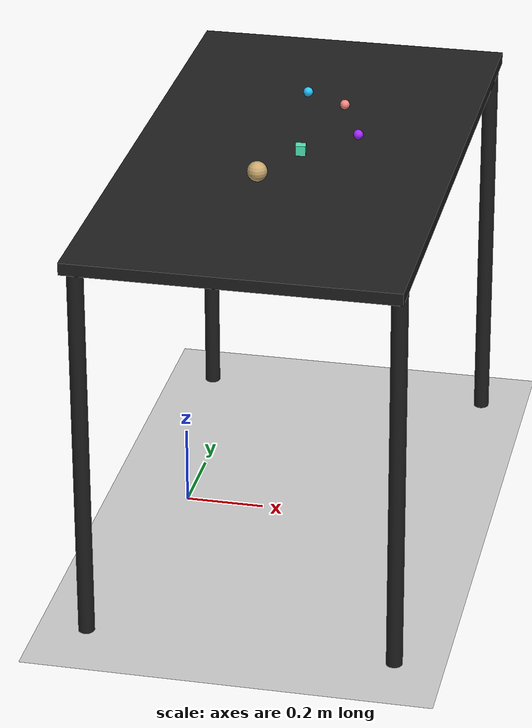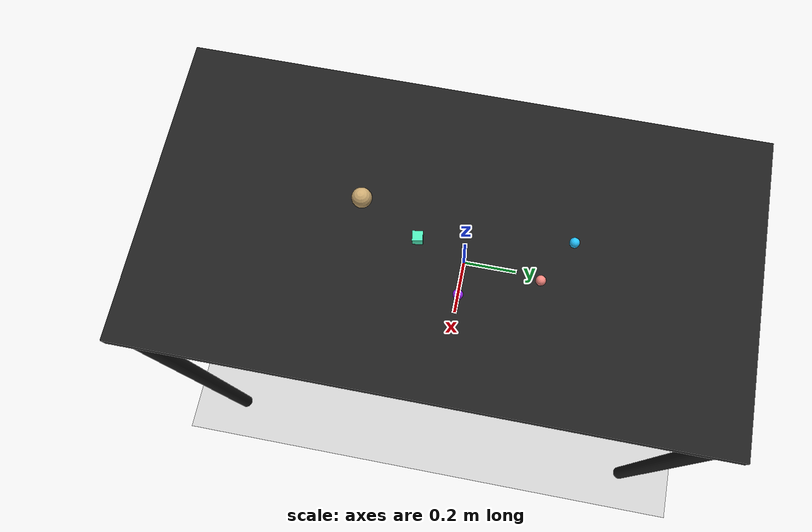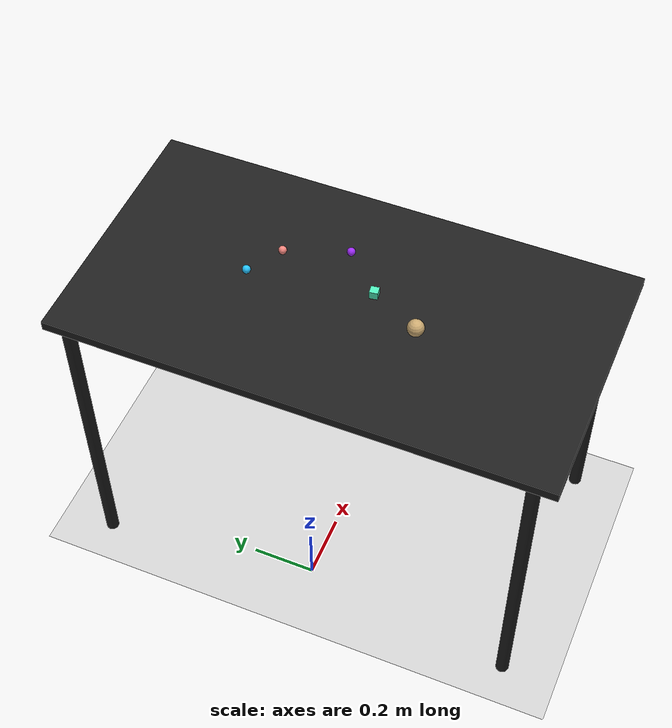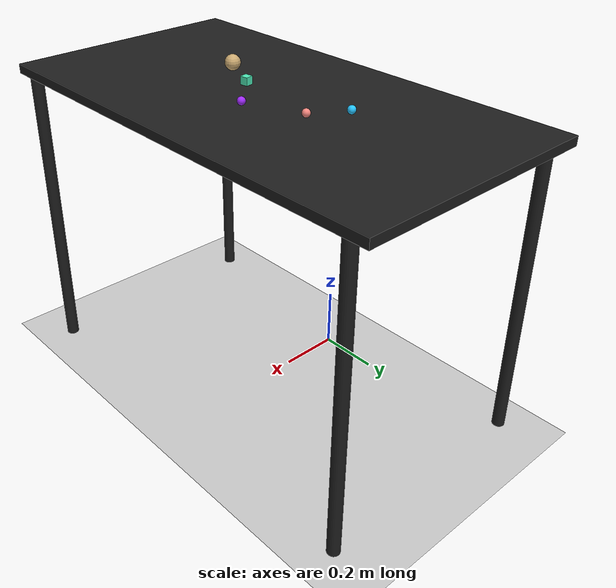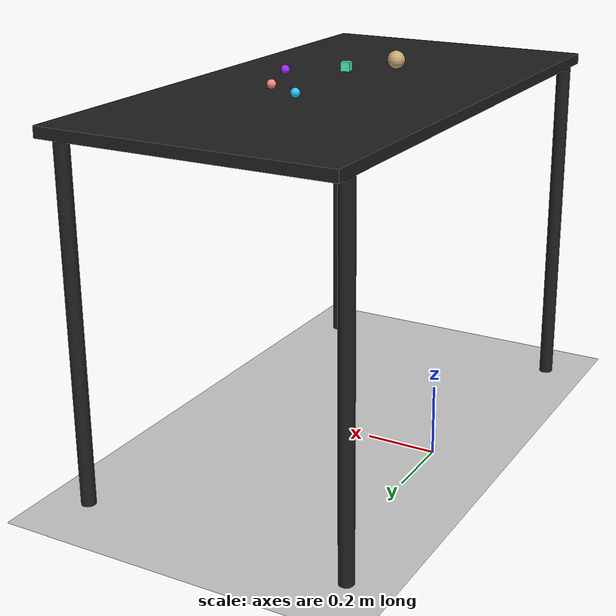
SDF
<?xml version="1.0" ?>
<sdf version="1.6">
  <world name="arm_world">
    <plugin filename="gz-sim-physics-system" name="gz::sim::systems::Physics">
      <engine>
        <filename>libgz-physics-bullet-featherstone-plugin.so</filename>
      </engine>
    </plugin>
    <plugin filename="gz-sim-user-commands-system" name="gz::sim::systems::UserCommands"/>
    <plugin filename="gz-sim-scene-broadcaster-system" name="gz::sim::systems::SceneBroadcaster"/>
    <plugin filename="gz-sim-sensors-system" name="gz::sim::systems::Sensors">
      <render_engine>ogre2</render_engine>
    </plugin>
    <gravity>0.0 0.0 -9.8</gravity>
    <scene>
      <shadows>false</shadows>
    </scene>
    <gui>
      <camera name="user_camera">
        <pose>0.75 -0.75 1.4 0 0.29 2.21</pose>
      </camera>
    </gui>
    <include>
      <uri>https://fuel.gazebosim.org/1.0/OpenRobotics/models/Sun</uri>
    </include>
    <model name="table">
      <static>true</static>
      <include>
        <uri>model://table</uri>
      </include>
      <pose>0.29 0 0 0 0 1.5708</pose>
    </model>
    <model name="ground_plane">
      <static>true</static>
      <link name="link">
        <collision name="collision">
          <geometry>
            <plane>
              <normal>0 0 1</normal>
            </plane>
          </geometry>
          <surface>
            <friction>
              <ode>
                <mu>1.0</mu>
                <mu2>1.0</mu2>
              </ode>
            </friction>
          </surface>
        </collision>
        <visual name="visual">
          <geometry>
            <plane>
              <normal>0 0 1</normal>
              <size>100 100</size>
            </plane>
          </geometry>
          <material>
            <ambient>0.8 0.8 0.8 1</ambient>
            <diffuse>0.8 0.8 0.8 1</diffuse>
            <specular>0.8 0.8 0.8 1</specular>
          </material>
        </visual>
      </link>
    </model>
    <model name="sphere_s_0">
      <pose>0.436 0.046 1.05 0 0 2.67</pose>
      <link name="sphere_s_0_link">
        <inertial>
          <mass>0.05</mass>
          <inertia>
            <ixx>2.04e-7</ixx>
            <iyy>2.04e-7</iyy>
            <izz>3.9e-8</izz>
            <ixy>0</ixy>
            <ixz>0</ixz>
            <iyz>0</iyz>
          </inertia>
        </inertial>
        <collision name="sphere_s_0_collision">
          <geometry>
            <sphere>
              <radius>0.0125</radius>
            </sphere>
          </geometry>
          <surface>
            <friction>
              <ode>
                <mu>0.8</mu>
                <mu2>0.8</mu2>
                <fdir1>0 0 1</fdir1>
                <slip1>0.001</slip1>
                <slip2>0.001</slip2>
              </ode>
              <torsional>
                <coefficient>0.1</coefficient>
                <surface_radius>0.015</surface_radius>
                <use_patch_radius>true</use_patch_radius>
              </torsional>
            </friction>
            <contact>
              <ode>
                <kp>1e5</kp>
                <kd>10</kd>
                <max_vel>0.1</max_vel>
                <min_depth>0.001</min_depth>
                <soft_cfm>0.01</soft_cfm>
                <soft_erp>0.2</soft_erp>
              </ode>
            </contact>
            <bounce>
              <restitution_coefficient>0.2</restitution_coefficient>
              <threshold>0.01</threshold>
            </bounce>
          </surface>
        </collision>
        <visual name="sphere_s_0_visual">
          <geometry>
            <sphere>
              <radius>0.0125</radius>
            </sphere>
          </geometry>
          <material>
            <ambient>0.62 0.16 0.98 1</ambient>
            <diffuse>0.62 0.16 0.98 1</diffuse>
          </material>
        </visual>
        <velocity_decay>
          <linear>1</linear>
          <angular>1</angular>
        </velocity_decay>
      </link>
    </model>
    <model name="sphere_s_1">
      <pose>0.26 0.293 1.05 0 0 2.46</pose>
      <link name="sphere_s_1_link">
        <inertial>
          <mass>0.05</mass>
          <inertia>
            <ixx>2.04e-7</ixx>
            <iyy>2.04e-7</iyy>
            <izz>3.9e-8</izz>
            <ixy>0</ixy>
            <ixz>0</ixz>
            <iyz>0</iyz>
          </inertia>
        </inertial>
        <collision name="sphere_s_1_collision">
          <geometry>
            <sphere>
              <radius>0.0125</radius>
            </sphere>
          </geometry>
          <surface>
            <friction>
              <ode>
                <mu>0.8</mu>
                <mu2>0.8</mu2>
                <fdir1>0 0 1</fdir1>
                <slip1>0.001</slip1>
                <slip2>0.001</slip2>
              </ode>
              <torsional>
                <coefficient>0.1</coefficient>
                <surface_radius>0.015</surface_radius>
                <use_patch_radius>true</use_patch_radius>
              </torsional>
            </friction>
            <contact>
              <ode>
                <kp>1e5</kp>
                <kd>10</kd>
                <max_vel>0.1</max_vel>
                <min_depth>0.001</min_depth>
                <soft_cfm>0.01</soft_cfm>
                <soft_erp>0.2</soft_erp>
              </ode>
            </contact>
            <bounce>
              <restitution_coefficient>0.2</restitution_coefficient>
              <threshold>0.01</threshold>
            </bounce>
          </surface>
        </collision>
        <visual name="sphere_s_1_visual">
          <geometry>
            <sphere>
              <radius>0.0125</radius>
            </sphere>
          </geometry>
          <material>
            <ambient>0.14 0.76 0.99 1</ambient>
            <diffuse>0.14 0.76 0.99 1</diffuse>
          </material>
        </visual>
        <velocity_decay>
          <linear>1</linear>
          <angular>1</angular>
        </velocity_decay>
      </link>
    </model>
    <model name="sphere_s_2">
      <pose>0.367 0.229 1.05 0 0 1.1</pose>
      <link name="sphere_s_2_link">
        <inertial>
          <mass>0.05</mass>
          <inertia>
            <ixx>2.04e-7</ixx>
            <iyy>2.04e-7</iyy>
            <izz>3.9e-8</izz>
            <ixy>0</ixy>
            <ixz>0</ixz>
            <iyz>0</iyz>
          </inertia>
        </inertial>
        <collision name="sphere_s_2_collision">
          <geometry>
            <sphere>
              <radius>0.0125</radius>
            </sphere>
          </geometry>
          <surface>
            <friction>
              <ode>
                <mu>0.8</mu>
                <mu2>0.8</mu2>
                <fdir1>0 0 1</fdir1>
                <slip1>0.001</slip1>
                <slip2>0.001</slip2>
              </ode>
              <torsional>
                <coefficient>0.1</coefficient>
                <surface_radius>0.015</surface_radius>
                <use_patch_radius>true</use_patch_radius>
              </torsional>
            </friction>
            <contact>
              <ode>
                <kp>1e5</kp>
                <kd>10</kd>
                <max_vel>0.1</max_vel>
                <min_depth>0.001</min_depth>
                <soft_cfm>0.01</soft_cfm>
                <soft_erp>0.2</soft_erp>
              </ode>
            </contact>
            <bounce>
              <restitution_coefficient>0.2</restitution_coefficient>
              <threshold>0.01</threshold>
            </bounce>
          </surface>
        </collision>
        <visual name="sphere_s_2_visual">
          <geometry>
            <sphere>
              <radius>0.0125</radius>
            </sphere>
          </geometry>
          <material>
            <ambient>0.95 0.52 0.49 1</ambient>
            <diffuse>0.95 0.52 0.49 1</diffuse>
          </material>
        </visual>
        <velocity_decay>
          <linear>1</linear>
          <angular>1</angular>
        </velocity_decay>
      </link>
    </model>
    <model name="cube_s_3">
      <pose>0.316 -0.073 1.05 0 0 0.14</pose>
      <link name="cube_s_3_link">
        <inertial>
          <mass>0.05</mass>
          <inertia>
            <ixx>2.04e-7</ixx>
            <iyy>2.04e-7</iyy>
            <izz>3.9e-8</izz>
            <ixy>0</ixy>
            <ixz>0</ixz>
            <iyz>0</iyz>
          </inertia>
        </inertial>
        <collision name="cube_s_3_collision">
          <geometry>
            <box>
              <size>0.025 0.025 0.025</size>
            </box>
          </geometry>
          <surface>
            <friction>
              <ode>
                <mu>0.8</mu>
                <mu2>0.8</mu2>
                <fdir1>0 0 1</fdir1>
                <slip1>0.001</slip1>
                <slip2>0.001</slip2>
              </ode>
              <torsional>
                <coefficient>0.1</coefficient>
                <surface_radius>0.015</surface_radius>
                <use_patch_radius>true</use_patch_radius>
              </torsional>
            </friction>
            <contact>
              <ode>
                <kp>1e5</kp>
                <kd>10</kd>
                <max_vel>0.1</max_vel>
                <min_depth>0.001</min_depth>
                <soft_cfm>0.01</soft_cfm>
                <soft_erp>0.2</soft_erp>
              </ode>
            </contact>
            <bounce>
              <restitution_coefficient>0.2</restitution_coefficient>
              <threshold>0.01</threshold>
            </bounce>
          </surface>
        </collision>
        <visual name="cube_s_3_visual">
          <geometry>
            <box>
              <size>0.025 0.025 0.025</size>
            </box>
          </geometry>
          <material>
            <ambient>0.3 0.92 0.72 1</ambient>
            <diffuse>0.3 0.92 0.72 1</diffuse>
          </material>
        </visual>
        <velocity_decay>
          <linear>1</linear>
          <angular>1</angular>
        </velocity_decay>
      </link>
    </model>
    <model name="sphere_m_4">
      <pose>0.241 -0.225 1.05 0 0 3.52</pose>
      <link name="sphere_m_4_link">
        <inertial>
          <mass>0.05</mass>
          <inertia>
            <ixx>2.04e-7</ixx>
            <iyy>2.04e-7</iyy>
            <izz>3.9e-8</izz>
            <ixy>0</ixy>
            <ixz>0</ixz>
            <iyz>0</iyz>
          </inertia>
        </inertial>
        <collision name="sphere_m_4_collision">
          <geometry>
            <sphere>
              <radius>0.025</radius>
            </sphere>
          </geometry>
          <surface>
            <friction>
              <ode>
                <mu>0.8</mu>
                <mu2>0.8</mu2>
                <fdir1>0 0 1</fdir1>
                <slip1>0.001</slip1>
                <slip2>0.001</slip2>
              </ode>
              <torsional>
                <coefficient>0.1</coefficient>
                <surface_radius>0.015</surface_radius>
                <use_patch_radius>true</use_patch_radius>
              </torsional>
            </friction>
            <contact>
              <ode>
                <kp>1e5</kp>
                <kd>10</kd>
                <max_vel>0.1</max_vel>
                <min_depth>0.001</min_depth>
                <soft_cfm>0.01</soft_cfm>
                <soft_erp>0.2</soft_erp>
              </ode>
            </contact>
            <bounce>
              <restitution_coefficient>0.2</restitution_coefficient>
              <threshold>0.01</threshold>
            </bounce>
          </surface>
        </collision>
        <visual name="sphere_m_4_visual">
          <geometry>
            <sphere>
              <radius>0.025</radius>
            </sphere>
          </geometry>
          <material>
            <ambient>0.79 0.66 0.44 1</ambient>
            <diffuse>0.79 0.66 0.44 1</diffuse>
          </material>
        </visual>
        <velocity_decay>
          <linear>1</linear>
          <angular>1</angular>
        </velocity_decay>
      </link>
    </model>
  </world>
</sdf>

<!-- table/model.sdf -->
<sdf version="1.5">
  <model name="table">
    <static>true</static>
    <link name="link">
      <collision name="surface">
        <pose>0 0 1.0 0 0 0</pose>
        <geometry>
          <box>
            <size>1.5 0.8 0.03</size>
          </box>
        </geometry>
        <surface>
          <friction>
            <ode>
              <mu>0.6</mu>
              <mu2>0.6</mu2>
            </ode>
          </friction>
        </surface>
      </collision>
      <visual name="surface">
        <pose>0 0 1.0 0 0 0</pose>
        <geometry>
          <box>
            <size>1.5 0.8 0.03</size>
          </box>
        </geometry>
        <material>
          <script>
            <uri>file://media/materials/scripts/gazebo.material</uri>
            <name>Gazebo/Black</name>
          </script>
        </material>
      </visual>
      <collision name="front_left_leg">
        <pose>0.68 0.38 0.5 0 0 0</pose>
        <geometry>
          <cylinder>
            <radius>0.02</radius>
            <length>1.0</length>
          </cylinder>
        </geometry>
      </collision>
      <visual name="front_left_leg">
        <pose>0.68 0.38 0.5 0 0 0</pose>
        <geometry>
          <cylinder>
            <radius>0.02</radius>
            <length>1.0</length>
          </cylinder>
        </geometry>
        <material>
          <script>
            <uri>file://media/materials/scripts/gazebo.material</uri>
            <name>Gazebo/Black</name>
          </script>
        </material>
      </visual>
      <collision name="front_right_leg">
        <pose>0.68 -0.38 0.5 0 0 0</pose>
        <geometry>
          <cylinder>
            <radius>0.02</radius>
            <length>1.0</length>
          </cylinder>
        </geometry>
      </collision>
      <visual name="front_right_leg">
        <pose>0.68 -0.38 0.5 0 0 0</pose>
        <geometry>
          <cylinder>
            <radius>0.02</radius>
            <length>1.0</length>
          </cylinder>
        </geometry>
        <material>
          <script>
            <uri>file://media/materials/scripts/gazebo.material</uri>
            <name>Gazebo/Black</name>
          </script>
        </material>
      </visual>
      <collision name="back_right_leg">
        <pose>-0.68 -0.38 0.5 0 0 0</pose>
        <geometry>
          <cylinder>
            <radius>0.02</radius>
            <length>1.0</length>
          </cylinder>
        </geometry>
      </collision>
      <visual name="back_right_leg">
        <pose>-0.68 -0.38 0.5 0 0 0</pose>
        <geometry>
          <cylinder>
            <radius>0.02</radius>
            <length>1.0</length>
          </cylinder>
        </geometry>
        <material>
          <script>
            <uri>file://media/materials/scripts/gazebo.material</uri>
            <name>Gazebo/Black</name>
          </script>
        </material>
      </visual>
      <collision name="back_left_leg">
        <pose>-0.68 0.38 0.5 0 0 0</pose>
        <geometry>
          <cylinder>
            <radius>0.02</radius>
            <length>1.0</length>
          </cylinder>
        </geometry>
      </collision>
      <visual name="back_left_leg">
        <pose>-0.68 0.38 0.5 0 0 0</pose>
        <geometry>
          <cylinder>
            <radius>0.02</radius>
            <length>1.0</length>
          </cylinder>
        </geometry>
        <material>
          <script>
            <uri>file://media/materials/scripts/gazebo.material</uri>
            <name>Gazebo/Black</name>
          </script>
        </material>
      </visual>
    </link>
  </model>
</sdf>
